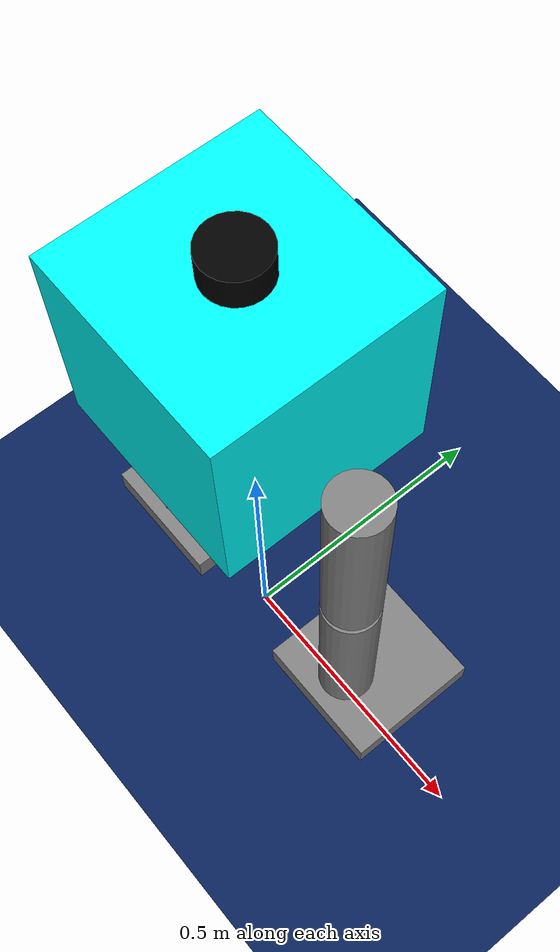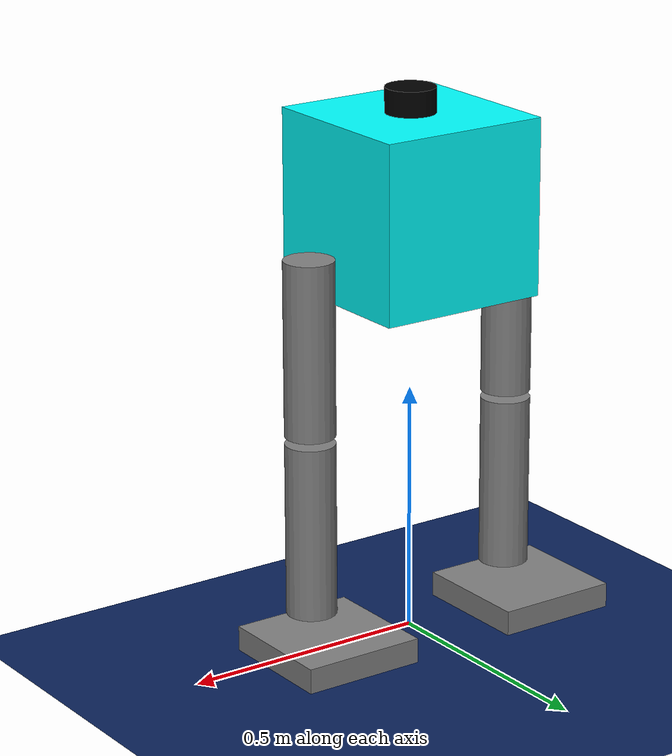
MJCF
<mujoco model="l2_robot">
    <option iterations="50" timestep="0.001" solver="PGS" gravity="0 0 -9.81" />
    <compiler angle="radian" meshdir="meshes" eulerseq="zyx" autolimits="true" />

    <default>
      <joint limited="true" damping="0.01" armature="0.01" frictionloss="0.01" />
      <geom condim="4" contype="1" conaffinity="15" friction="0.9 0.2 0.2" solref="0.001 2" />
      <motor ctrllimited="true" />
      <equality solref="0.001 2" />
      <default class="visualgeom">
        <geom material="visualgeom" condim="1" contype="0" conaffinity="0" />
      </default>
    </default>

    <worldbody>
      <light directional="true" diffuse="0.4 0.4 0.4" specular="0.1 0.1 0.1" pos="0 0 5.0" dir="0 0 -1" castshadow="false" />
      <light directional="true" diffuse="0.6 0.6 0.6" specular="0.2 0.2 0.2" pos="0 0 4" dir="0 0 -1" />
      <geom name="ground" type="plane" pos="0 0 0" size="100 100 0.001" quat="1 0 0 0" material="matplane_blue" condim="3" conaffinity="15" contype="1"/>
      <camera name="fixed" pos="0 -3.0 1.365" xyaxes="1 0 0 0 0 1" />
      <camera name="track" mode="trackcom" pos="0 -3.0 1.365" xyaxes="1 0 0 0 0 1" />
      <body name="root" pos="0 0 0.875" quat="1 0 0 0">
      <freejoint name="root" />
      <site name="imu" size="0.01" pos="0 0 0"/>
      <inertial pos="0 0 0" mass="1" diaginertia="0.020417 0.020417 0.020417"/>
      <geom name="base_collision" size="0.175 0.175 0.175" type="box" rgba="0 1 1 1" contype="1" conaffinity="0" density="0" group="1" />
      <geom name="lidar_collision" size="0.05 0.025" pos="0 0 0.2" type="cylinder" rgba="0 0 0 1" contype="1" conaffinity="0" density="0" group="1" />

      <body name="left_thigh_link" pos="-0.235 0 -0.075" >
        <inertial pos="0 0 0" mass="1" diaginertia="0.0108333 0.0108333 0.00125" />
        <joint name="left_hip_joint" pos="0 0 0" axis="1 0 0" range="-1.57 1.57" actuatorfrcrange="-10 10" />
        <geom name="left_thigh_collision" size="0.05 0.175" pos="0 0 -0.175" type="cylinder" contype="1" conaffinity="1" density="0" group="1" quat="0 1 0 0"/>

        <body name="left_leg_link" pos="0 0 -0.365">
          <inertial pos="0 0 0" mass="1" diaginertia="0.0108333 0.0108333 0.00125" />
          <joint name="left_knuckle_joint" pos="0 0 0" axis="1 0 0" range="-1.57 0" actuatorfrcrange="-10 10" />
          <geom name="left_leg_collision" size="0.05 0.175" pos="0 0 -0.175" type="cylinder" contype="1" conaffinity="1" density="0" group="1" quat="0 1 0 0"/>

          <body name="left_foot_link" pos="0 0 -0.375">
            <inertial pos="0 0 0" quat="0.5 0.5 -0.5 0.5" mass="0.5" diaginertia="0.00520833 0.00270833 0.00270833" />
            <joint name="left_ankle_joint" pos="0 0 0" axis="1 0 0" range="-1.57 1.57" actuatorfrcrange="-10 10" />
            <geom name="left_foot_collision" size="0.125 0.125 0.025" pos="0 0.055 -0.025" type="box" contype="1" conaffinity="1" density="0" group="1" />
            <site name="left_foot_site" pos="0 0.055 -0.025" size="0.01" />
          </body>
        </body>
      </body>

      <body name="right_thigh_link" pos="0.235 0 -0.075">
        <inertial pos="0 0 0" mass="1" diaginertia="0.0108333 0.0108333 0.00125" />
        <joint name="right_hip_joint" pos="0 0 0" axis="1 0 0" range="-1.57 1.57" actuatorfrcrange="-10 10" />
        <geom name="right_thigh_collision" size="0.05 0.175" pos="0 0 -0.175" type="cylinder" contype="1" conaffinity="1" density="0" group="1" quat="0 1 0 0"/>

        <body name="right_leg_link" pos="0 0 -0.365">
          <inertial pos="0 0 0" mass="1" diaginertia="0.0108333 0.0108333 0.00125" />
          <joint name="right_knuckle_joint" pos="0 0 0" axis="1 0 0" range="-1.57 0" actuatorfrcrange="-10 10" />
          <geom name="right_leg_collision" size="0.05 0.175" pos="0 0 -0.175" type="cylinder" contype="1" conaffinity="1" density="0" group="1" quat="0 1 0 0"/>

          <body name="right_foot_link" pos="0 0 -0.375">
            <inertial pos="0 0 0" quat="0.5 0.5 -0.5 0.5" mass="0.5" diaginertia="0.00520833 0.00270833 0.00270833" />
            <joint name="right_ankle_joint" pos="0 0 0" axis="1 0 0" range="-1.57 1.57" actuatorfrcrange="-10 10" />
            <geom name="right_foot_collision" size="0.125 0.125 0.025" pos="0 0.055 -0.025" type="box" contype="1" conaffinity="1" density="0" group="1" />
            <site name="right_foot_site" pos="0 0.055 -0.025" size="0.01" />
          </body>
        </body>
      </body>
    </body>

    </worldbody>

    <asset>
      <texture name="texplane" type="2d" builtin="checker" rgb1=".0 .0 .0" rgb2=".8 .8 .8" width="100" height="100" />
      <material name="matplane" reflectance="0." texture="texplane" texrepeat="1 1" texuniform="true" />
      <material name="visualgeom" rgba="0.5 0.9 0.2 1" />
      <texture name="texplane2" type="2d" builtin="checker" rgb1="0 0 0.2" rgb2="0.1 0.3 0.5" width="100" height="100" />
      <material name="matplane_blue" reflectance="0.3" texture="texplane2" texrepeat="2 2" texuniform="true" rgba="0.7 0.85 1.0 1" />
    </asset>

    <actuator>
      <motor name="left_hip_joint" joint="left_hip_joint" ctrllimited="true" ctrlrange="-500 500" gear="1"/>
      <motor name="left_knuckle_joint" joint="left_knuckle_joint" ctrllimited="true" ctrlrange="-500 500" gear="1"/>
      <motor name="left_ankle_joint" joint="left_ankle_joint" ctrllimited="true" ctrlrange="-500 500" gear="1"/>
      <motor name="right_hip_joint" joint="right_hip_joint" ctrllimited="true" ctrlrange="-500 500" gear="1"/>
      <motor name="right_knuckle_joint" joint="right_knuckle_joint" ctrllimited="true" ctrlrange="-500 500" gear="1"/>
      <motor name="right_ankle_joint" joint="right_ankle_joint" ctrllimited="true" ctrlrange="-500 500" gear="1"/>
    </actuator>

    <sensor>
      <actuatorpos name="left_hip_joint_p" actuator="left_hip_joint" />
      <actuatorvel name="left_hip_joint_v" actuator="left_hip_joint" />
      <actuatorfrc name="left_hip_joint_f" actuator="left_hip_joint" noise="0.001" />
      <actuatorpos name="left_knuckle_joint_p" actuator="left_knuckle_joint" />
      <actuatorvel name="left_knuckle_joint_v" actuator="left_knuckle_joint" />
      <actuatorfrc name="left_knuckle_joint_f" actuator="left_knuckle_joint" noise="0.001" />
      <actuatorpos name="left_ankle_joint_p" actuator="left_ankle_joint" />
      <actuatorvel name="left_ankle_joint_v" actuator="left_ankle_joint" />
      <actuatorfrc name="left_ankle_joint_f" actuator="left_ankle_joint" noise="0.001" />
      <actuatorpos name="right_hip_joint_p" actuator="right_hip_joint" />
      <actuatorvel name="right_hip_joint_v" actuator="right_hip_joint" />
      <actuatorfrc name="right_hip_joint_f" actuator="right_hip_joint" noise="0.001" />
      <actuatorpos name="right_knuckle_joint_p" actuator="right_knuckle_joint" />
      <actuatorvel name="right_knuckle_joint_v" actuator="right_knuckle_joint" />
      <actuatorfrc name="right_knuckle_joint_f" actuator="right_knuckle_joint" noise="0.001" />
      <actuatorpos name="right_ankle_joint_p" actuator="right_ankle_joint" />
      <actuatorvel name="right_ankle_joint_v" actuator="right_ankle_joint" />
      <actuatorfrc name="right_ankle_joint_f" actuator="right_ankle_joint" noise="0.001" />
      <framequat name="orientation" objtype="site" noise="0.001" objname="imu" />
      <gyro name="angular-velocity" site="imu" noise="0.005" cutoff="34.9" />
    </sensor>
  </mujoco>
